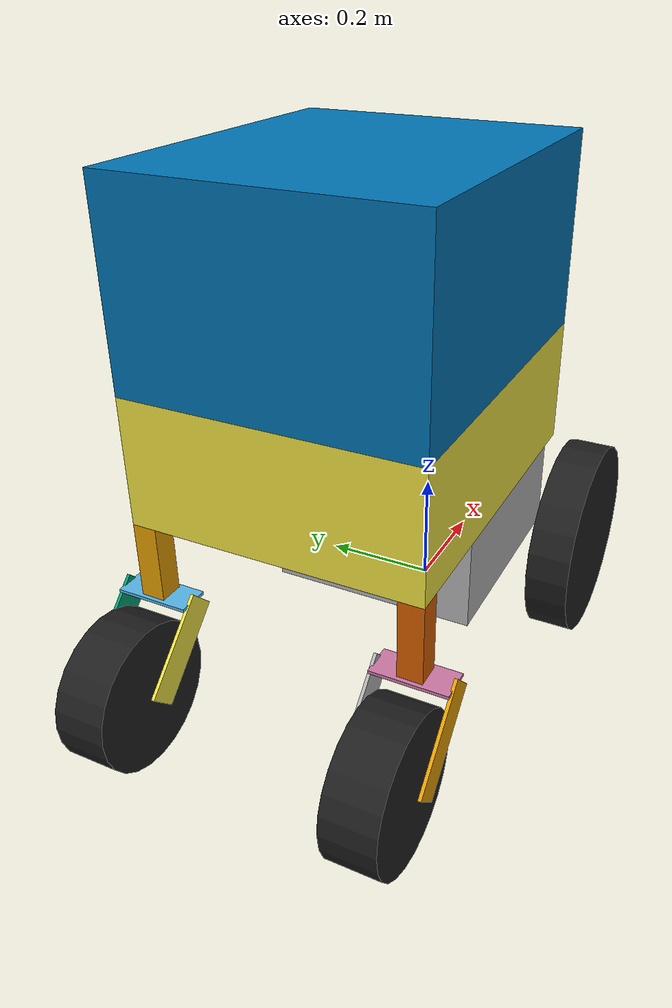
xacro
<?xml version="1.0"?>
<robot
     xmlns:xacro="http://www.ros.org/wiki/xacro" name="mobot">
     <!-- define the base-link origin to lie at floor level, between the drive wheels-->
     <!--main body is a simple box; origin is a center of box-->
    <xacro:property name="bodylen" value="0.5461" />
    <xacro:property name="bodywidth" value="0.4572" />
    <xacro:property name="bodyheight" value="0.2" />
    <xacro:property name="bodyclearance" value="0.4" />  <!--clearance from bottom of box to ground-->
    <xacro:property name="mobot_top_height" value="0.3" />

    <!-- derived values-->
    <xacro:property name="half_bodylen" value="${bodylen/2.0}" />
    <xacro:property name="half_bodyheight" value="${bodyheight/2.0}" />
    <!-- placement of main body relative to base link frame -->
    <xacro:property name="bodyOX" value="${-half_bodylen}" />
    <xacro:property name="bodyOY" value="0" />
    <xacro:property name="bodyOZ" value="0.45" />

    <!-- define the drive-wheel dimensions-->
    <xacro:property name="tirediam" value="0.3302" />
    <xacro:property name="tirerad" value="${tirediam/2.0}" />
    <xacro:property name="tirewidth" value="0.06985" />
    <!-- "track" is the distance between the drive wheels -->
    <xacro:property name="track" value=".56515" />

    <!-- battery box dimensions -->
    <xacro:property name="batterylen" value="0.381" />
    <xacro:property name="batterywidth" value="0.3556" />
    <xacro:property name="batteryheight" value="0.254" />
    <!-- placement of battery box relative to base frame -->
    <xacro:property name="batOX" value="-0.05" />
    <xacro:property name="batOY" value="0" />
    <xacro:property name="batOZ" value="0.22" />

    <xacro:property name="M_PI" value="3.1415926535897931" />
    <xacro:property name="boschwidth" value="0.0381" />
    <xacro:property name="casterdrop" value="0.125" />
    <xacro:property name="bracketwidth" value="0.1175" />
    <xacro:property name="bracketheight" value="0.16" />
    <xacro:property name="bracketthick" value="0.0508" />
    <xacro:property name="bracketangle" value="0.7854" />
    <xacro:property name="casterwidth" value="0.0826" />
    <xacro:property name="casterdiam" value="0.2286" />

    <!--here is a default inertia matrix with small, but legal values; use this when don't need accuracy for I -->
    <!--model will assign inertia matrix dominated by main body box -->
    <xacro:macro name="default_inertial" params="mass">
        <inertial>
            <mass value="${mass}" />
            <inertia ixx="0.01" ixy="0.0" ixz="0.0"
         iyy="0.01" iyz="0.0"
         izz="0.01" />
        </inertial>
    </xacro:macro>
    <xacro:macro name="wheel" params="prefix reflect">
        <link name="${prefix}_wheel">
            <visual>
                <geometry>
                    <cylinder radius="${tirerad}" length="${tirewidth}"/>
                </geometry>
            </visual>
            <collision>
                <geometry>
                    <cylinder radius="${tirerad}" length="${tirewidth}"/>
                </geometry>
            </collision>
            <inertial>
            <!--assign inertial properties to drive wheels -->
            <mass value="1" />
            <inertia ixx="0.1" ixy="0" ixz="0"
              iyy="0.1" iyz="0"
              izz="0.1" />
        </inertial>
        </link>
        <joint name="${prefix}_wheel_joint" type="continuous">
            <axis xyz="0 0 1"/>
            <parent link="base_link"/>
            <child link="${prefix}_wheel"/>
            <origin xyz="0 ${reflect*track/2} ${tirerad}" rpy="0 ${M_PI/2} ${M_PI/2}"/>
            <limit effort="100" velocity="15" />
            <joint_properties damping="0.0" friction="0.0" />
        </joint>
    </xacro:macro>
    <xacro:macro name="caster" params="prefix reflect">
        <link name="castdrop_${prefix}">
            <visual>
                <geometry>
                    <box size="${boschwidth} ${boschwidth} ${casterdrop}"/>
                </geometry>
                <origin xyz="0 0 0" rpy="0 0 0"/>
            </visual>
            <collision>
                <geometry>
                    <box size="${boschwidth} ${boschwidth} ${casterdrop}"/>
                </geometry>
                <origin xyz="0 0 0" rpy="0 0 0"/>
            </collision>
            <xacro:default_inertial mass="0.2"/>
        </link>
        <joint name="cast2base_${prefix}" type="fixed">
            <parent link="base_link"/>
            <child link="castdrop_${prefix}"/>
            <origin xyz="${-bodylen/2+bodyOX+boschwidth/2} ${reflect*bodywidth/2-reflect*boschwidth/2} ${-casterdrop/2-bodyheight/2+bodyOZ}" />
        </joint>
        <link name="brackettop_${prefix}">
            <visual>
                <geometry>
                    <box size="${bracketwidth} ${bracketthick} .005"/>
                </geometry>
                <origin xyz="0 0 0" rpy="0 0 0"/>
            </visual>
            <collision>
                <geometry>
                    <box size="${bracketwidth} ${bracketthick} .005"/>
                </geometry>
                <origin xyz="0 0 0" rpy="0 0 0"/>
            </collision>
            <xacro:default_inertial mass="0.2"/>
        </link>
        <joint name="cast2bracket_${prefix}" type="continuous">
            <axis xyz="0 0 1"/>
            <parent link="castdrop_${prefix}"/>
            <child link="brackettop_${prefix}"/>
            <origin xyz="0 0 ${-casterdrop/2}" rpy="0 0 ${M_PI/2}"/>
            <joint_properties damping="0.0" friction="0.0" />
        </joint>
        <link name="bracketside1_${prefix}">
            <visual>
                <geometry>
                    <box size="${bracketthick} ${bracketheight} .005"/>
                </geometry>
                <origin xyz="0 0 0" rpy="${M_PI/2} ${-bracketangle} ${M_PI/2}"/>
            </visual>
            <collision>
                <geometry>
                    <box size="${bracketthick} ${bracketheight} .005"/>
                </geometry>
                <origin xyz="0 0 0" rpy="${M_PI/2} ${-bracketangle} ${M_PI/2}"/>
            </collision>
            <xacro:default_inertial mass="0.2"/>
        </link>
        <joint name="brack2top1_${prefix}" type="fixed">
            <parent link="brackettop_${prefix}"/>
            <child link="bracketside1_${prefix}"/>
            <origin xyz="${bracketwidth/2} .04 -${bracketheight/2-.02}" rpy="0 0 0" />
        </joint>
        <link name="bracketside2_${prefix}">
            <visual>
                <geometry>
                    <box size="${bracketthick} ${bracketheight} .005"/>
                </geometry>
                <origin xyz="0 0 0" rpy="${M_PI/2} ${-bracketangle} ${M_PI/2}"/>
            </visual>
            <collision>
                <geometry>
                    <box size="${bracketthick} ${bracketheight} .005"/>
                </geometry>
                <origin xyz="0 0 0" rpy="${M_PI/2} ${-bracketangle} ${M_PI/2}"/>
            </collision>
            <xacro:default_inertial mass="0.2"/>
        </link>
        <joint name="brack2top2_${prefix}" type="fixed">
            <parent link="brackettop_${prefix}"/>
            <child link="bracketside2_${prefix}"/>
            <origin xyz="${-bracketwidth/2} .04 -${bracketheight/2-.02}" rpy="0 0 0" />
        </joint>
        <link name="${prefix}_casterwheel">
            <visual>
                <geometry>
                    <cylinder radius="${casterdiam/2}" length="${casterwidth}"/>
                </geometry>
            </visual>
            <collision>
                <geometry>
                    <cylinder radius="${casterdiam/2}" length="${casterwidth}"/>
                </geometry>
            </collision>
            <!-- accept default inertial properties for caster wheels-->
            <xacro:default_inertial mass="0.5"/>
        </link>
        <joint name="${prefix}_caster_joint" type="continuous">
            <axis xyz="0 0 1"/>
            <parent link="bracketside1_${prefix}"/>
            <child link="${prefix}_casterwheel"/>
            <origin xyz="${-casterwidth/2-.02} .053 -.053" rpy="0 ${M_PI/2} 0"/>
            <limit effort="100" velocity="15" />
            <joint_properties damping="0.0" friction="0.0" />
        </joint>
    </xacro:macro>

    <xacro:caster prefix="left" reflect="1"/>
    <xacro:caster prefix="right" reflect="-1"/>

    <link name="base_link">
    </link>
<!-- dummy massless link, just so Gazebo won't complain about KDL requiring massless base_link-->
    <joint name="KDL_base_link_jnt" type="fixed">
        <parent link="base_link"/>
        <child link="base_link2"/>
    </joint>

    <link name="base_link2">
        <visual>
            <geometry>
                <box size="${bodylen} ${bodywidth} ${bodyheight}"/>
            </geometry>
            <origin xyz="${bodyOX} ${bodyOY} ${bodyOZ}" rpy="0 0 0"/>
        </visual>
        <collision>
            <geometry>
                <box size="${bodylen} ${bodywidth} ${bodyheight}"/>
            </geometry>
            <origin xyz="${bodyOX} ${bodyOY} ${bodyOZ}" rpy="0 0 0"/>
        </collision>
        <inertial>
            <!--assign almost all the mass to the main body box; set m= 100kg; treat I as approx m*r^2 -->
            <mass value="100" />
            <!--move COM to help stability-->
            <origin xyz="${bodyOX} 0 0"/>
            <inertia ixx="10" ixy="0" ixz="0"
              iyy="10" iyz="0"
              izz="10" />
        </inertial>
    </link>

    <link name="mobot_top">
        <visual>
            <geometry>
                <box size="${bodylen} ${bodywidth} ${mobot_top_height}"/>
            </geometry>
            <origin xyz="${0} ${bodyOY} ${-mobot_top_height/2}" rpy="0 0 0"/>
        </visual>
        <collision>
            <geometry>
                <box size="${bodylen} ${bodywidth} ${mobot_top_height}"/>
            </geometry>
            <origin xyz="${0} ${bodyOY} ${-mobot_top_height/2}" rpy="0 0 0"/>
            <!--origin xyz="${bodyOX} ${bodyOY} ${bodyOZ}" rpy="0 0 0"/-->
        </collision>
        <inertial>
            <!--assign almost all the mass to the main body box; set m= 100kg; treat I as approx m*r^2 -->
            <mass value="0.1" />
            <inertia ixx="0.1" ixy="0" ixz="0"
              iyy="0.1" iyz="0"
              izz="0.1" />
        </inertial>
    </link>
     <joint name="mobot_top_to_base" type="fixed">
        <parent link="base_link"/>
        <child link="mobot_top"/>
        <origin xyz="${bodyOX} 0 ${bodyOZ+mobot_top_height+bodyheight/2}" rpy="0 0 0"/>
    </joint>

    <xacro:wheel prefix="left" reflect="1"/>
    <xacro:wheel prefix="right" reflect="-1"/>
    <link name="batterybox">
        <visual>
            <geometry>
                <box size="${batterylen} ${batterywidth} ${batteryheight}"/>
            </geometry>
            <origin xyz="0 0 0" rpy="0 0 0"/>
        </visual>
        <collision>
            <geometry>
                <box size="${batterylen} ${batterywidth} ${batteryheight}"/>
            </geometry>
            <origin xyz="0 0 0" rpy="0 0 0"/>
        </collision>
        <xacro:default_inertial mass="1"/>
    </link>
    <joint name="batterytobase" type="fixed">
        <parent link="base_link"/>
        <child link="batterybox"/>
        <origin xyz="${batOX} ${batOY} ${batOZ}" rpy="0 0 0"/>
    </joint>
 <gazebo>
  <plugin name="differential_drive_controller" filename="libgazebo_ros_diff_drive.so">
   <alwaysOn>true</alwaysOn>
    <updateRate>100</updateRate>
    <leftJoint>right_wheel_joint</leftJoint>
    <rightJoint>left_wheel_joint</rightJoint>
    <wheelSeparation>${track}</wheelSeparation>
    <wheelDiameter>${tirediam}</wheelDiameter>
    <torque>200</torque>
    <commandTopic>cmd_vel</commandTopic>
    <odometryTopic>odom</odometryTopic>
    <odometryFrame>odom</odometryFrame>
    <robotBaseFrame>base_link</robotBaseFrame>
    <!--don't publish wheel TF, so it does not conflict with robot_state_publisher -->
    <publishWheelTF>false</publishWheelTF>
    <publishWheelJointState>true</publishWheelJointState>
    <legacyMode>true</legacyMode>
    <odometrySource>encoder</odometrySource>
    <wheelTorque>5</wheelTorque>
    <wheelAcceleration>0</wheelAcceleration>
    <rosDebugLevel>na</rosDebugLevel>
    <publishTf>1</publishTf>
  </plugin>
 </gazebo>
 <gazebo>
   <plugin name="joint_state_publisher"
      filename="libgazebo_ros_joint_state_publisher.so">
      <jointName>cast2bracket_right, cast2bracket_left, right_caster_joint, left_caster_joint</jointName>
      <updateRate>100</updateRate>
   </plugin>
 </gazebo>

<gazebo reference="right_wheel">
 <mu1>100000.0</mu1>
  <mu2>100000.0</mu2>
  <material>Gazebo/Black</material>
</gazebo>
<gazebo reference="left_wheel">
  <mu1>100000.0</mu1>
  <mu2>100000.0</mu2>
  <material>Gazebo/Black</material>
</gazebo>

<gazebo reference="right_casterwheel">
  <mu1>100000.0</mu1>
  <mu2>100000.0</mu2>
  <material>Gazebo/Black</material>
</gazebo>

<gazebo reference="left_casterwheel">
  <mu1>100000.0</mu1>
  <mu2>100000.0</mu2>
  <material>Gazebo/Black</material>
</gazebo>
 <!-- add a simulated lidar, including visual, collision and inertial properties, and physics simulation-->
  <link name="lidar_link">
      <!-- coarse LIDAR model; a simple box -->

      <visual>
          <origin xyz="0 0 0" rpy="0 0 0" />
          <geometry>
              <box size="0.2 0.2 0.2" />
          </geometry>
          <material name="sick_grey">
              <color rgba="0.7 0.5 0.3 1.0"/>
          </material>
      </visual>

      <inertial>
          <mass value="4.0" />
          <origin xyz="0 0 0" rpy="0 0 0"/>
          <inertia ixx="0.01" ixy="0" ixz="0" iyy="0.01" iyz="0" izz="0.01" />
      </inertial>
  </link>
  <!--the above displays a box meant to imply Lidar-->

  <joint name="lidar_joint" type="fixed">
      <axis xyz="0 1 0" />
      <origin xyz="0.1 0 0.56" rpy="0 0 0"/>
      <parent link="base_link"/>
      <child link="lidar_link"/>
  </joint>
    <!-- here is the gazebo plug-in to simulate a lidar sensor -->
  <gazebo reference="lidar_link">
    <sensor type="ray" name="sick_lidar_sensor">
      <pose>0 0 0 0 0 0</pose>
      <visualize>false</visualize>
      <update_rate>40</update_rate>
      <ray>
        <scan>
          <horizontal>
            <samples>181</samples>
            <resolution>1</resolution>
            <min_angle>-1.570796</min_angle>
            <max_angle>1.570796</max_angle>
          </horizontal>
        </scan>
        <range>
          <min>0.10</min>
          <max>80.0</max>
          <resolution>0.01</resolution>
        </range>
        <noise>
          <type>gaussian</type>
          <mean>0.0</mean>
          <stddev>0.01</stddev>
        </noise>
      </ray>
      <plugin name="gazebo_ros_lidar_controller" filename="libgazebo_ros_laser.so">
        <topicName>/scan</topicName>
        <frameName>lidar_link</frameName>
      </plugin>
    </sensor>
  </gazebo>
</robot>
